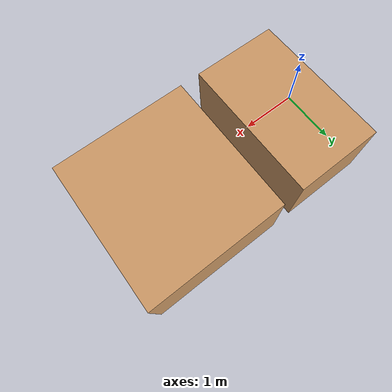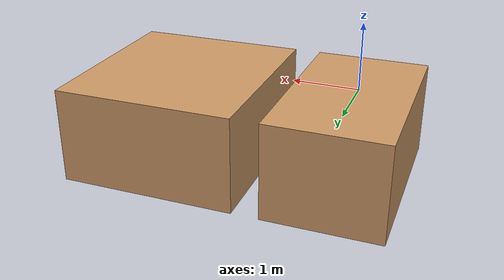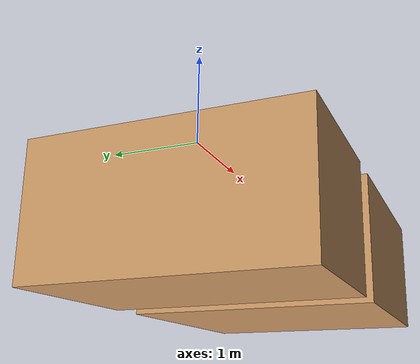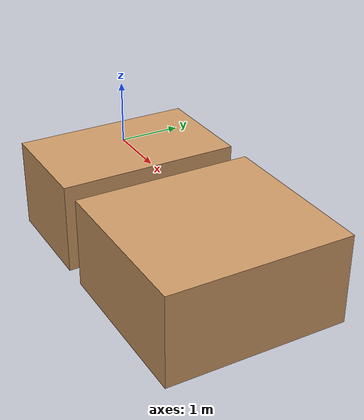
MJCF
<mujoco model="test_box_trench_terrain">
  <asset>
    <mesh name="test_box_trench_terrain_mesh0" file="meshs/test_box_trench_terrain_mesh0.stl"/>
    <mesh name="test_box_trench_terrain_mesh1" file="meshs/test_box_trench_terrain_mesh1.stl"/>
  </asset>
  <worldbody>
    <geom type="mesh" mesh="test_box_trench_terrain_mesh0" rgba="0.8 0.6 0.4 1" pos="-0.8 -1.5 -0.05" contype="1" conaffinity="1" group="1"/>
    <geom type="mesh" mesh="test_box_trench_terrain_mesh1" rgba="0.8 0.6 0.4 1" pos="-0.8 -1.5 -0.05" contype="1" conaffinity="1" group="1"/>
  </worldbody>
  <custom>
    <text name="terrain:test_box_trench_terrain" data="difficulty:0.8886828397654662"/>
    <text name="terrain_key_pos0:init" data="0.0 0.0 -0.05"/>
    <text name="terrain_key_pos1:trench_edge" data="1.0 0.0 -0.05"/>
    <text name="terrain_key_pos2:trench_edge force" data="1.1 0.0 -0.05"/>
    <text name="terrain_key_pos3:trench_edge force end" data="1.2 0.0 -0.05"/>
    <text name="terrain_key_pos4:trench end" data="1.4221707099413667 0.0 -0.05"/>
    <text name="terrain_key_pos5:end" data="1.5221707099413668 0.0 -0.05"/>
  </custom>
</mujoco>
